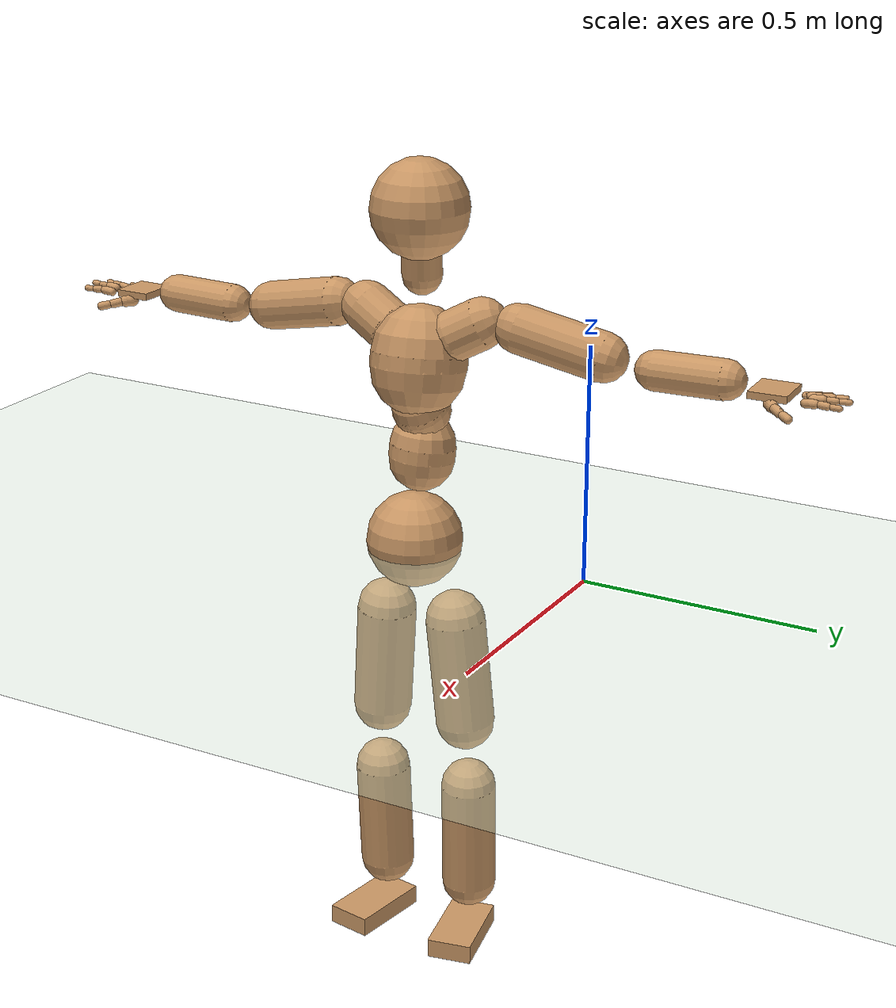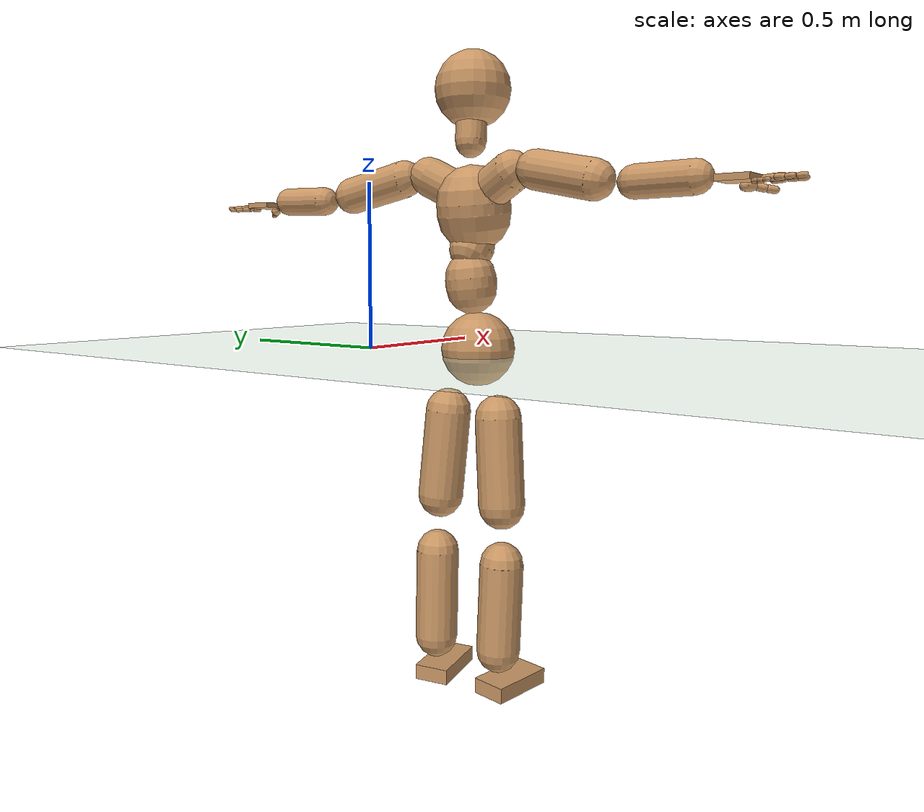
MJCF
<mujoco model="humanoid">
  <compiler coordinate="local" angle="radian"/>
  <default>
    <joint damping="0.0" armature="0.01" stiffness="0.0" limited="true"/>
    <geom conaffinity="1" condim="3" contype="7" margin="0.001" rgba="0.8 0.6 .4 1"/>
  </default>
  <asset>
    <texture type="skybox" builtin="gradient" rgb1=".4 .5 .6" rgb2="0 0 0" width="100" height="100"/>
    <texture builtin="flat" height="1278" mark="cross" markrgb="1 1 1" name="texgeom" random="0.01" rgb1="0.8 0.6 0.4" rgb2="0.8 0.6 0.4" type="cube" width="127"/>
    <texture builtin="checker" height="100" name="texplane" rgb1="0 0 0" rgb2="0.8 0.8 0.8" type="2d" width="100"/>
    <material name="MatPlane" reflectance="0.5" shininess="1" specular="1" texrepeat="60 60" texture="texplane"/>
    <material name="geom" texture="texgeom" texuniform="true"/>
  </asset>
  <worldbody>
    <light cutoff="100" diffuse="1 1 1" dir="-0 0 -1.3" directional="true" exponent="1" pos="0 0 1.3" specular=".1 .1 .1"/>
    <geom conaffinity="1" condim="3" name="floor" pos="0 0 0" rgba="0.8 0.9 0.8 1" size="100 100 .2" type="plane" material="MatPlane"/>
    <body name="Pelvis" pos="0.0007 -0.3987 0.0176">
      <freejoint name="Pelvis"/>
      <geom type="sphere" contype="1" conaffinity="1" density="500" size="0.1038" pos="0.0000 0.0000 0.0000" name="Pelvis"/>
      <body name="L_Hip" pos="-0.0206 0.0795 -0.098">
        <joint name="L_Hip_x" type="hinge" pos="0 0 0" axis="1 0 0" stiffness="800" damping="80" armature="0.02" range="-180.0000 180.0000"/>
        <joint name="L_Hip_y" type="hinge" pos="0 0 0" axis="0 1 0" stiffness="800" damping="80" armature="0.02" range="-180.0000 180.0000"/>
        <joint name="L_Hip_z" type="hinge" pos="0 0 0" axis="0 0 1" stiffness="800" damping="80" armature="0.02" range="-180.0000 180.0000"/>
        <geom type="capsule" contype="1" conaffinity="1" density="500" fromto="-0.0048 0.0058 -0.0820 -0.0194 0.0232 -0.3282" size="0.0647" name="L_Hip"/>
        <body name="L_Knee" pos="-0.0242 0.029 -0.4102">
          <joint name="L_Knee_x" type="hinge" pos="0 0 0" axis="1 0 0" stiffness="800" damping="80" armature="0.02" range="-180.0000 180.0000"/>
          <joint name="L_Knee_y" type="hinge" pos="0 0 0" axis="0 1 0" stiffness="800" damping="80" armature="0.02" range="-180.0000 180.0000"/>
          <joint name="L_Knee_z" type="hinge" pos="0 0 0" axis="0 0 1" stiffness="800" damping="80" armature="0.02" range="-180.0000 180.0000"/>
          <geom type="capsule" contype="1" conaffinity="1" density="500" fromto="-0.0047 -0.0017 -0.0839 -0.0190 -0.0070 -0.3354" size="0.0609" name="L_Knee"/>
          <body name="L_Ankle" pos="-0.0237 -0.0087 -0.4193">
            <joint name="L_Ankle_x" type="hinge" pos="0 0 0" axis="1 0 0" stiffness="800" damping="80" armature="0.02" range="-180.0000 180.0000"/>
            <joint name="L_Ankle_y" type="hinge" pos="0 0 0" axis="0 1 0" stiffness="800" damping="80" armature="0.02" range="-180.0000 180.0000"/>
            <joint name="L_Ankle_z" type="hinge" pos="0 0 0" axis="0 0 1" stiffness="800" damping="80" armature="0.02" range="-180.0000 180.0000"/>
            <geom type="box" contype="1" conaffinity="1" density="500" pos="0.0582 0.0113 -0.0237" size="0.0929 0.0498 0.0215" quat="0.9954 0.0000 0.0000 0.0956" name="L_Ankle"/>
            <body name="L_Toe" pos="0.1164 0.0226 -0.0475">
              <joint name="L_Toe_x" type="hinge" pos="0 0 0" axis="1 0 0" stiffness="500" damping="50" armature="0.02" range="-180.0000 180.0000"/>
              <joint name="L_Toe_y" type="hinge" pos="0 0 0" axis="0 1 0" stiffness="500" damping="50" armature="0.02" range="-180.0000 180.0000"/>
              <joint name="L_Toe_z" type="hinge" pos="0 0 0" axis="0 0 1" stiffness="500" damping="50" armature="0.02" range="-180.0000 180.0000"/>
              <geom type="box" contype="1" conaffinity="1" density="500" pos="0.0000 0.0000 0.0234" size="0.001 0.0024 0.0011" quat="0.9948 0.0000 0.0000 0.1021" name="L_Toe"/>
            </body>
          </body>
        </body>
      </body>
      <body name="R_Hip" pos="-0.0215 -0.0789 -0.105">
        <joint name="R_Hip_x" type="hinge" pos="0 0 0" axis="1 0 0" stiffness="800" damping="80" armature="0.02" range="-180.0000 180.0000"/>
        <joint name="R_Hip_y" type="hinge" pos="0 0 0" axis="0 1 0" stiffness="800" damping="80" armature="0.02" range="-180.0000 180.0000"/>
        <joint name="R_Hip_z" type="hinge" pos="0 0 0" axis="0 0 1" stiffness="800" damping="80" armature="0.02" range="-180.0000 180.0000"/>
        <geom type="capsule" contype="1" conaffinity="1" density="500" fromto="-0.0036 -0.0067 -0.0812 -0.0143 -0.0267 -0.3247" size="0.0645" name="R_Hip"/>
        <body name="R_Knee" pos="-0.0179 -0.0333 -0.4059">
          <joint name="R_Knee_x" type="hinge" pos="0 0 0" axis="1 0 0" stiffness="800" damping="80" armature="0.02" range="-180.0000 180.0000"/>
          <joint name="R_Knee_y" type="hinge" pos="0 0 0" axis="0 1 0" stiffness="800" damping="80" armature="0.02" range="-180.0000 180.0000"/>
          <joint name="R_Knee_z" type="hinge" pos="0 0 0" axis="0 0 1" stiffness="800" damping="80" armature="0.02" range="-180.0000 180.0000"/>
          <geom type="capsule" contype="1" conaffinity="1" density="500" fromto="-0.0040 0.0007 -0.0820 -0.0161 0.0030 -0.3282" size="0.0609" name="R_Knee"/>
          <body name="R_Ankle" pos="-0.0201 0.0037 -0.4102">
            <joint name="R_Ankle_x" type="hinge" pos="0 0 0" axis="1 0 0" stiffness="800" damping="80" armature="0.02" range="-180.0000 180.0000"/>
            <joint name="R_Ankle_y" type="hinge" pos="0 0 0" axis="0 1 0" stiffness="800" damping="80" armature="0.02" range="-180.0000 180.0000"/>
            <joint name="R_Ankle_z" type="hinge" pos="0 0 0" axis="0 0 1" stiffness="800" damping="80" armature="0.02" range="-180.0000 180.0000"/>
            <geom type="box" contype="1" conaffinity="1" density="500" pos="0.0549 -0.0089 -0.0255" size="0.0929 0.0498 0.0215" quat="0.9968 0.0000 0.0000 -0.0805" name="R_Ankle"/>
            <body name="R_Toe" pos="0.1098 -0.0179 -0.051">
              <joint name="R_Toe_x" type="hinge" pos="0 0 0" axis="1 0 0" stiffness="500" damping="50" armature="0.02" range="-180.0000 180.0000"/>
              <joint name="R_Toe_y" type="hinge" pos="0 0 0" axis="0 1 0" stiffness="500" damping="50" armature="0.02" range="-180.0000 180.0000"/>
              <joint name="R_Toe_z" type="hinge" pos="0 0 0" axis="0 0 1" stiffness="500" damping="50" armature="0.02" range="-180.0000 180.0000"/>
              <geom type="box" contype="1" conaffinity="1" density="500" pos="0.0000 0.0000 0.0251" size="0.001 0.0024 0.0011" quat="0.9975 0.0000 0.0000 -0.0704" name="R_Toe"/>
            </body>
          </body>
        </body>
      </body>
      <body name="Torso" pos="-0.0283 -0.0055 0.114">
        <joint name="Torso_x" type="hinge" pos="0 0 0" axis="1 0 0" stiffness="1000" damping="100" armature="0.02" range="-180.0000 180.0000"/>
        <joint name="Torso_y" type="hinge" pos="0 0 0" axis="0 1 0" stiffness="1000" damping="100" armature="0.02" range="-180.0000 180.0000"/>
        <joint name="Torso_z" type="hinge" pos="0 0 0" axis="0 0 1" stiffness="1000" damping="100" armature="0.02" range="-180.0000 180.0000"/>
        <geom type="capsule" contype="1" conaffinity="1" density="500" fromto="-0.0085 0.0056 0.0865 -0.0057 0.0037 0.0577" size="0.0711" name="Torso"/>
        <body name="Spine" pos="-0.0141 0.0093 0.1442">
          <joint name="Spine_x" type="hinge" pos="0 0 0" axis="1 0 0" stiffness="1000" damping="100" armature="0.02" range="-180.0000 180.0000"/>
          <joint name="Spine_y" type="hinge" pos="0 0 0" axis="0 1 0" stiffness="1000" damping="100" armature="0.02" range="-180.0000 180.0000"/>
          <joint name="Spine_z" type="hinge" pos="0 0 0" axis="0 0 1" stiffness="1000" damping="100" armature="0.02" range="-180.0000 180.0000"/>
          <geom type="capsule" contype="1" conaffinity="1" density="500" fromto="0.0177 -0.0029 0.0312 0.0118 -0.0019 0.0208" size="0.0619" name="Spine"/>
          <body name="Chest" pos="0.0295 -0.0048 0.052">
            <joint name="Chest_x" type="hinge" pos="0 0 0" axis="1 0 0" stiffness="1000" damping="100" armature="0.02" range="-180.0000 180.0000"/>
            <joint name="Chest_y" type="hinge" pos="0 0 0" axis="0 1 0" stiffness="1000" damping="100" armature="0.02" range="-180.0000 180.0000"/>
            <joint name="Chest_z" type="hinge" pos="0 0 0" axis="0 0 1" stiffness="1000" damping="100" armature="0.02" range="-180.0000 180.0000"/>
            <geom type="capsule" contype="1" conaffinity="1" density="500" fromto="-0.0156 -0.0017 0.0935 -0.0104 -0.0011 0.0623" size="0.1022" name="Chest"/>
            <body name="Neck" pos="-0.037 -0.0058 0.2186">
              <joint name="Neck_x" type="hinge" pos="0 0 0" axis="1 0 0" stiffness="500" damping="50" armature="0.02" range="-180.0000 180.0000"/>
              <joint name="Neck_y" type="hinge" pos="0 0 0" axis="0 1 0" stiffness="500" damping="50" armature="0.02" range="-180.0000 180.0000"/>
              <joint name="Neck_z" type="hinge" pos="0 0 0" axis="0 0 1" stiffness="500" damping="50" armature="0.02" range="-180.0000 180.0000"/>
              <geom type="capsule" contype="1" conaffinity="1" density="500" fromto="0.0050 0.0018 0.0353 0.0202 0.0071 0.1411" size="0.0424" name="Neck"/>
              <body name="Head" pos="0.0252 0.0089 0.1764">
                <joint name="Head_x" type="hinge" pos="0 0 0" axis="1 0 0" stiffness="500" damping="50" armature="0.02" range="-180.0000 180.0000"/>
                <joint name="Head_y" type="hinge" pos="0 0 0" axis="0 1 0" stiffness="500" damping="50" armature="0.02" range="-180.0000 180.0000"/>
                <joint name="Head_z" type="hinge" pos="0 0 0" axis="0 0 1" stiffness="500" damping="50" armature="0.02" range="-180.0000 180.0000"/>
                <geom type="sphere" contype="1" conaffinity="1" density="500" size="0.1038" pos="0.0000 0.0000 0.0000" name="Head"/>
              </body>
            </body>
            <body name="L_Thorax" pos="-0.0172 0.0541 0.1268">
              <joint name="L_Thorax_x" type="hinge" pos="0 0 0" axis="1 0 0" stiffness="500" damping="50" armature="0.02" range="-180.0000 180.0000"/>
              <joint name="L_Thorax_y" type="hinge" pos="0 0 0" axis="0 1 0" stiffness="500" damping="50" armature="0.02" range="-180.0000 180.0000"/>
              <joint name="L_Thorax_z" type="hinge" pos="0 0 0" axis="0 0 1" stiffness="500" damping="50" armature="0.02" range="-180.0000 180.0000"/>
              <geom type="capsule" contype="1" conaffinity="1" density="500" fromto="-0.0053 0.0194 0.0104 -0.0211 0.0775 0.0417" size="0.0544" name="L_Thorax"/>
              <body name="L_Shoulder" pos="-0.0264 0.0969 0.0522">
                <joint name="L_Shoulder_x" type="hinge" pos="0 0 0" axis="1 0 0" stiffness="500" damping="50" armature="0.02" range="-180.0000 180.0000"/>
                <joint name="L_Shoulder_y" type="hinge" pos="0 0 0" axis="0 1 0" stiffness="500" damping="50" armature="0.02" range="-180.0000 180.0000"/>
                <joint name="L_Shoulder_z" type="hinge" pos="0 0 0" axis="0 0 1" stiffness="500" damping="50" armature="0.02" range="-180.0000 180.0000"/>
                <geom type="capsule" contype="1" conaffinity="1" density="500" fromto="-0.0063 0.0600 -0.0131 -0.0251 0.2401 -0.0523" size="0.052" name="L_Shoulder"/>
                <body name="L_Elbow" pos="-0.0314 0.3001 -0.0653">
                  <joint name="L_Elbow_x" type="hinge" pos="0 0 0" axis="1 0 0" stiffness="500" damping="50" armature="0.02" range="-720.0000 720.0000"/>
                  <joint name="L_Elbow_y" type="hinge" pos="0 0 0" axis="0 1 0" stiffness="500" damping="50" armature="0.02" range="-720.0000 720.0000"/>
                  <joint name="L_Elbow_z" type="hinge" pos="0 0 0" axis="0 0 1" stiffness="500" damping="50" armature="0.02" range="-720.0000 720.0000"/>
                  <geom type="capsule" contype="1" conaffinity="1" density="500" fromto="0.0007 0.0502 0.0014 0.0028 0.2010 0.0057" size="0.0413" name="L_Elbow"/>
                  <body name="L_Wrist" pos="0.0035 0.2512 0.0072">
                    <joint name="L_Wrist_x" type="hinge" pos="0 0 0" axis="1 0 0" stiffness="300" damping="30" armature="0.02" range="-180.0000 180.0000"/>
                    <joint name="L_Wrist_y" type="hinge" pos="0 0 0" axis="0 1 0" stiffness="300" damping="30" armature="0.02" range="-180.0000 180.0000"/>
                    <joint name="L_Wrist_z" type="hinge" pos="0 0 0" axis="0 0 1" stiffness="300" damping="30" armature="0.02" range="-180.0000 180.0000"/>
                    <geom type="box" contype="1" conaffinity="1" density="500" pos="-0.0021 0.0483 -0.0092" size="0.0397 0.0458 0.0075" quat="0.7225 0.0000 0.0000 -0.6914" name="L_Wrist"/>
                    <body name="L_Index1" pos="0.0207 0.113 -0.0162">
                      <joint name="L_Index1_x" type="hinge" pos="0 0 0" axis="1 0 0" stiffness="100" damping="10" armature="0.02" range="-180.0000 180.0000"/>
                      <joint name="L_Index1_y" type="hinge" pos="0 0 0" axis="0 1 0" stiffness="100" damping="10" armature="0.02" range="-180.0000 180.0000"/>
                      <joint name="L_Index1_z" type="hinge" pos="0 0 0" axis="0 0 1" stiffness="100" damping="10" armature="0.02" range="-180.0000 180.0000"/>
                      <geom type="capsule" contype="1" conaffinity="1" density="500" fromto="0.0005 0.0066 0.0006 0.0021 0.0263 0.0025" size="0.0091" name="L_Index1"/>
                      <body name="L_Index2" pos="0.0026 0.0329 0.0031">
                        <joint name="L_Index2_x" type="hinge" pos="0 0 0" axis="1 0 0" stiffness="100" damping="10" armature="0.02" range="-180.0000 180.0000"/>
                        <joint name="L_Index2_y" type="hinge" pos="0 0 0" axis="0 1 0" stiffness="100" damping="10" armature="0.02" range="-180.0000 180.0000"/>
                        <joint name="L_Index2_z" type="hinge" pos="0 0 0" axis="0 0 1" stiffness="100" damping="10" armature="0.02" range="-180.0000 180.0000"/>
                        <geom type="capsule" contype="1" conaffinity="1" density="500" fromto="0.0001 0.0046 -0.0003 0.0003 0.0185 -0.0012" size="0.0076" name="L_Index2"/>
                        <body name="L_Index3" pos="0.0004 0.0231 -0.0015">
                          <joint name="L_Index3_x" type="hinge" pos="0 0 0" axis="1 0 0" stiffness="100" damping="10" armature="0.02" range="-180.0000 180.0000"/>
                          <joint name="L_Index3_y" type="hinge" pos="0 0 0" axis="0 1 0" stiffness="100" damping="10" armature="0.02" range="-180.0000 180.0000"/>
                          <joint name="L_Index3_z" type="hinge" pos="0 0 0" axis="0 0 1" stiffness="100" damping="10" armature="0.02" range="-180.0000 180.0000"/>
                          <geom type="capsule" contype="1" conaffinity="1" density="500" fromto="0.0005 0.0050 0.0001 0.0019 0.0201 0.0004" size="0.0063" name="L_Index3"/>
                        </body>
                      </body>
                    </body>
                    <body name="L_Middle1" pos="-0.0023 0.1204 -0.0135">
                      <joint name="L_Middle1_x" type="hinge" pos="0 0 0" axis="1 0 0" stiffness="100" damping="10" armature="0.02" range="-180.0000 180.0000"/>
                      <joint name="L_Middle1_y" type="hinge" pos="0 0 0" axis="0 1 0" stiffness="100" damping="10" armature="0.02" range="-180.0000 180.0000"/>
                      <joint name="L_Middle1_z" type="hinge" pos="0 0 0" axis="0 0 1" stiffness="100" damping="10" armature="0.02" range="-180.0000 180.0000"/>
                      <geom type="capsule" contype="1" conaffinity="1" density="500" fromto="-0.0008 0.0062 0.0003 -0.0030 0.0249 0.0013" size="0.0093" name="L_Middle1"/>
                      <body name="L_Middle2" pos="-0.0038 0.0311 0.0016">
                        <joint name="L_Middle2_x" type="hinge" pos="0 0 0" axis="1 0 0" stiffness="100" damping="10" armature="0.02" range="-180.0000 180.0000"/>
                        <joint name="L_Middle2_y" type="hinge" pos="0 0 0" axis="0 1 0" stiffness="100" damping="10" armature="0.02" range="-180.0000 180.0000"/>
                        <joint name="L_Middle2_z" type="hinge" pos="0 0 0" axis="0 0 1" stiffness="100" damping="10" armature="0.02" range="-180.0000 180.0000"/>
                        <geom type="capsule" contype="1" conaffinity="1" density="500" fromto="-0.0008 0.0048 -0.0001 -0.0030 0.0193 -0.0005" size="0.0069" name="L_Middle2"/>
                        <body name="L_Middle3" pos="-0.0038 0.0241 -0.0006">
                          <joint name="L_Middle3_x" type="hinge" pos="0 0 0" axis="1 0 0" stiffness="100" damping="10" armature="0.02" range="-180.0000 180.0000"/>
                          <joint name="L_Middle3_y" type="hinge" pos="0 0 0" axis="0 1 0" stiffness="100" damping="10" armature="0.02" range="-180.0000 180.0000"/>
                          <joint name="L_Middle3_z" type="hinge" pos="0 0 0" axis="0 0 1" stiffness="100" damping="10" armature="0.02" range="-180.0000 180.0000"/>
                          <geom type="capsule" contype="1" conaffinity="1" density="500" fromto="-0.0004 0.0052 0.0003 -0.0014 0.0209 0.0011" size="0.0061" name="L_Middle3"/>
                        </body>
                      </body>
                    </body>
                    <body name="L_Pinky1" pos="-0.0418 0.0935 -0.0217">
                      <joint name="L_Pinky1_x" type="hinge" pos="0 0 0" axis="1 0 0" stiffness="100" damping="10" armature="0.02" range="-180.0000 180.0000"/>
                      <joint name="L_Pinky1_y" type="hinge" pos="0 0 0" axis="0 1 0" stiffness="100" damping="10" armature="0.02" range="-180.0000 180.0000"/>
                      <joint name="L_Pinky1_z" type="hinge" pos="0 0 0" axis="0 0 1" stiffness="100" damping="10" armature="0.02" range="-180.0000 180.0000"/>
                      <geom type="capsule" contype="1" conaffinity="1" density="500" fromto="-0.0024 0.0030 -0.0001 -0.0096 0.0122 -0.0004" size="0.0066" name="L_Pinky1"/>
                      <body name="L_Pinky2" pos="-0.012 0.0152 -0.0005">
                        <joint name="L_Pinky2_x" type="hinge" pos="0 0 0" axis="1 0 0" stiffness="100" damping="10" armature="0.02" range="-180.0000 180.0000"/>
                        <joint name="L_Pinky2_y" type="hinge" pos="0 0 0" axis="0 1 0" stiffness="100" damping="10" armature="0.02" range="-180.0000 180.0000"/>
                        <joint name="L_Pinky2_z" type="hinge" pos="0 0 0" axis="0 0 1" stiffness="100" damping="10" armature="0.02" range="-180.0000 180.0000"/>
                        <geom type="capsule" contype="1" conaffinity="1" density="500" fromto="-0.0024 0.0031 -0.0002 -0.0094 0.0123 -0.0008" size="0.0064" name="L_Pinky2"/>
                        <body name="L_Pinky3" pos="-0.0118 0.0154 -0.001">
                          <joint name="L_Pinky3_x" type="hinge" pos="0 0 0" axis="1 0 0" stiffness="100" damping="10" armature="0.02" range="-180.0000 180.0000"/>
                          <joint name="L_Pinky3_y" type="hinge" pos="0 0 0" axis="0 1 0" stiffness="100" damping="10" armature="0.02" range="-180.0000 180.0000"/>
                          <joint name="L_Pinky3_z" type="hinge" pos="0 0 0" axis="0 0 1" stiffness="100" damping="10" armature="0.02" range="-180.0000 180.0000"/>
                          <geom type="capsule" contype="1" conaffinity="1" density="500" fromto="-0.0020 0.0035 0.0002 -0.0078 0.0139 0.0008" size="0.005" name="L_Pinky3"/>
                        </body>
                      </body>
                    </body>
                    <body name="L_Ring1" pos="-0.0256 0.1076 -0.0163">
                      <joint name="L_Ring1_x" type="hinge" pos="0 0 0" axis="1 0 0" stiffness="100" damping="10" armature="0.02" range="-180.0000 180.0000"/>
                      <joint name="L_Ring1_y" type="hinge" pos="0 0 0" axis="0 1 0" stiffness="100" damping="10" armature="0.02" range="-180.0000 180.0000"/>
                      <joint name="L_Ring1_z" type="hinge" pos="0 0 0" axis="0 0 1" stiffness="100" damping="10" armature="0.02" range="-180.0000 180.0000"/>
                      <geom type="capsule" contype="1" conaffinity="1" density="500" fromto="-0.0011 0.0057 0.0004 -0.0043 0.0227 0.0016" size="0.008" name="L_Ring1"/>
                      <body name="L_Ring2" pos="-0.0053 0.0284 0.0019">
                        <joint name="L_Ring2_x" type="hinge" pos="0 0 0" axis="1 0 0" stiffness="100" damping="10" armature="0.02" range="-180.0000 180.0000"/>
                        <joint name="L_Ring2_y" type="hinge" pos="0 0 0" axis="0 1 0" stiffness="100" damping="10" armature="0.02" range="-180.0000 180.0000"/>
                        <joint name="L_Ring2_z" type="hinge" pos="0 0 0" axis="0 0 1" stiffness="100" damping="10" armature="0.02" range="-180.0000 180.0000"/>
                        <geom type="capsule" contype="1" conaffinity="1" density="500" fromto="-0.0015 0.0046 -0.0002 -0.0058 0.0185 -0.0008" size="0.0074" name="L_Ring2"/>
                        <body name="L_Ring3" pos="-0.0073 0.0231 -0.001">
                          <joint name="L_Ring3_x" type="hinge" pos="0 0 0" axis="1 0 0" stiffness="100" damping="10" armature="0.02" range="-180.0000 180.0000"/>
                          <joint name="L_Ring3_y" type="hinge" pos="0 0 0" axis="0 1 0" stiffness="100" damping="10" armature="0.02" range="-180.0000 180.0000"/>
                          <joint name="L_Ring3_z" type="hinge" pos="0 0 0" axis="0 0 1" stiffness="100" damping="10" armature="0.02" range="-180.0000 180.0000"/>
                          <geom type="capsule" contype="1" conaffinity="1" density="500" fromto="-0.0011 0.0050 0.0002 -0.0042 0.0201 0.0008" size="0.0058" name="L_Ring3"/>
                        </body>
                      </body>
                    </body>
                    <body name="L_Thumb1" pos="0.0278 0.0487 -0.0242">
                      <joint name="L_Thumb1_x" type="hinge" pos="0 0 0" axis="1 0 0" stiffness="100" damping="10" armature="0.02" range="-180.0000 180.0000"/>
                      <joint name="L_Thumb1_y" type="hinge" pos="0 0 0" axis="0 1 0" stiffness="100" damping="10" armature="0.02" range="-180.0000 180.0000"/>
                      <joint name="L_Thumb1_z" type="hinge" pos="0 0 0" axis="0 0 1" stiffness="100" damping="10" armature="0.02" range="-180.0000 180.0000"/>
                      <geom type="capsule" contype="1" conaffinity="1" density="500" fromto="0.0049 0.0037 0.0002 0.0197 0.0150 0.0006" size="0.0123" name="L_Thumb1"/>
                      <body name="L_Thumb2" pos="0.0246 0.0187 0.0008">
                        <joint name="L_Thumb2_x" type="hinge" pos="0 0 0" axis="1 0 0" stiffness="100" damping="10" armature="0.02" range="-180.0000 180.0000"/>
                        <joint name="L_Thumb2_y" type="hinge" pos="0 0 0" axis="0 1 0" stiffness="100" damping="10" armature="0.02" range="-180.0000 180.0000"/>
                        <joint name="L_Thumb2_z" type="hinge" pos="0 0 0" axis="0 0 1" stiffness="100" damping="10" armature="0.02" range="-180.0000 180.0000"/>
                        <geom type="capsule" contype="1" conaffinity="1" density="500" fromto="0.0030 0.0044 -0.0012 0.0120 0.0174 -0.0047" size="0.0096" name="L_Thumb2"/>
                        <body name="L_Thumb3" pos="0.015 0.0218 -0.0058">
                          <joint name="L_Thumb3_x" type="hinge" pos="0 0 0" axis="1 0 0" stiffness="100" damping="10" armature="0.02" range="-180.0000 180.0000"/>
                          <joint name="L_Thumb3_y" type="hinge" pos="0 0 0" axis="0 1 0" stiffness="100" damping="10" armature="0.02" range="-180.0000 180.0000"/>
                          <joint name="L_Thumb3_z" type="hinge" pos="0 0 0" axis="0 0 1" stiffness="100" damping="10" armature="0.02" range="-180.0000 180.0000"/>
                          <geom type="capsule" contype="1" conaffinity="1" density="500" fromto="0.0034 0.0048 -0.0008 0.0136 0.0190 -0.0031" size="0.0088" name="L_Thumb3"/>
                        </body>
                      </body>
                    </body>
                  </body>
                </body>
              </body>
            </body>
            <body name="R_Thorax" pos="-0.0238 -0.0566 0.1222">
              <joint name="R_Thorax_x" type="hinge" pos="0 0 0" axis="1 0 0" stiffness="500" damping="50" armature="0.02" range="-180.0000 180.0000"/>
              <joint name="R_Thorax_y" type="hinge" pos="0 0 0" axis="0 1 0" stiffness="500" damping="50" armature="0.02" range="-180.0000 180.0000"/>
              <joint name="R_Thorax_z" type="hinge" pos="0 0 0" axis="0 0 1" stiffness="500" damping="50" armature="0.02" range="-180.0000 180.0000"/>
              <geom type="capsule" contype="1" conaffinity="1" density="500" fromto="-0.0040 -0.0210 0.0110 -0.0160 -0.0840 0.0440" size="0.0555" name="R_Thorax"/>
              <body name="R_Shoulder" pos="-0.02 -0.105 0.055">
                <joint name="R_Shoulder_x" type="hinge" pos="0 0 0" axis="1 0 0" stiffness="500" damping="50" armature="0.02" range="-180.0000 180.0000"/>
                <joint name="R_Shoulder_y" type="hinge" pos="0 0 0" axis="0 1 0" stiffness="500" damping="50" armature="0.02" range="-180.0000 180.0000"/>
                <joint name="R_Shoulder_z" type="hinge" pos="0 0 0" axis="0 0 1" stiffness="500" damping="50" armature="0.02" range="-180.0000 180.0000"/>
                <geom type="capsule" contype="1" conaffinity="1" density="500" fromto="-0.0046 -0.0579 -0.0120 -0.0185 -0.2317 -0.0480" size="0.0524" name="R_Shoulder"/>
                <body name="R_Elbow" pos="-0.0232 -0.2897 -0.06">
                  <joint name="R_Elbow_x" type="hinge" pos="0 0 0" axis="1 0 0" stiffness="500" damping="50" armature="0.02" range="-720.0000 720.0000"/>
                  <joint name="R_Elbow_y" type="hinge" pos="0 0 0" axis="0 1 0" stiffness="500" damping="50" armature="0.02" range="-720.0000 720.0000"/>
                  <joint name="R_Elbow_z" type="hinge" pos="0 0 0" axis="0 0 1" stiffness="500" damping="50" armature="0.02" range="-720.0000 720.0000"/>
                  <geom type="capsule" contype="1" conaffinity="1" density="500" fromto="-0.0013 -0.0504 0.0006 -0.0050 -0.2015 0.0023" size="0.0415" name="R_Elbow"/>
                  <body name="R_Wrist" pos="-0.0063 -0.2519 0.0028">
                    <joint name="R_Wrist_x" type="hinge" pos="0 0 0" axis="1 0 0" stiffness="300" damping="30" armature="0.02" range="-180.0000 180.0000"/>
                    <joint name="R_Wrist_y" type="hinge" pos="0 0 0" axis="0 1 0" stiffness="300" damping="30" armature="0.02" range="-180.0000 180.0000"/>
                    <joint name="R_Wrist_z" type="hinge" pos="0 0 0" axis="0 0 1" stiffness="300" damping="30" armature="0.02" range="-180.0000 180.0000"/>
                    <geom type="box" contype="1" conaffinity="1" density="500" pos="-0.0012 -0.0476 -0.0088" size="0.0397 0.0429 0.0077" quat="0.7163 0.0000 0.0000 0.6978" name="R_Wrist"/>
                    <body name="R_Index1" pos="0.0224 -0.1115 -0.0153">
                      <joint name="R_Index1_x" type="hinge" pos="0 0 0" axis="1 0 0" stiffness="100" damping="10" armature="0.02" range="-180.0000 180.0000"/>
                      <joint name="R_Index1_y" type="hinge" pos="0 0 0" axis="0 1 0" stiffness="100" damping="10" armature="0.02" range="-180.0000 180.0000"/>
                      <joint name="R_Index1_z" type="hinge" pos="0 0 0" axis="0 0 1" stiffness="100" damping="10" armature="0.02" range="-180.0000 180.0000"/>
                      <geom type="capsule" contype="1" conaffinity="1" density="500" fromto="0.0005 -0.0066 0.0006 0.0021 -0.0263 0.0025" size="0.0091" name="R_Index1"/>
                      <body name="R_Index2" pos="0.0026 -0.0329 0.0031">
                        <joint name="R_Index2_x" type="hinge" pos="0 0 0" axis="1 0 0" stiffness="100" damping="10" armature="0.02" range="-180.0000 180.0000"/>
                        <joint name="R_Index2_y" type="hinge" pos="0 0 0" axis="0 1 0" stiffness="100" damping="10" armature="0.02" range="-180.0000 180.0000"/>
                        <joint name="R_Index2_z" type="hinge" pos="0 0 0" axis="0 0 1" stiffness="100" damping="10" armature="0.02" range="-180.0000 180.0000"/>
                        <geom type="capsule" contype="1" conaffinity="1" density="500" fromto="0.0001 -0.0046 -0.0003 0.0003 -0.0185 -0.0012" size="0.0076" name="R_Index2"/>
                        <body name="R_Index3" pos="0.0004 -0.0231 -0.0015">
                          <joint name="R_Index3_x" type="hinge" pos="0 0 0" axis="1 0 0" stiffness="100" damping="10" armature="0.02" range="-180.0000 180.0000"/>
                          <joint name="R_Index3_y" type="hinge" pos="0 0 0" axis="0 1 0" stiffness="100" damping="10" armature="0.02" range="-180.0000 180.0000"/>
                          <joint name="R_Index3_z" type="hinge" pos="0 0 0" axis="0 0 1" stiffness="100" damping="10" armature="0.02" range="-180.0000 180.0000"/>
                          <geom type="capsule" contype="1" conaffinity="1" density="500" fromto="0.0005 -0.0042 0.0001 0.0019 -0.0169 0.0004" size="0.0066" name="R_Index3"/>
                        </body>
                      </body>
                    </body>
                    <body name="R_Middle1" pos="-0.0006 -0.1189 -0.0127">
                      <joint name="R_Middle1_x" type="hinge" pos="0 0 0" axis="1 0 0" stiffness="100" damping="10" armature="0.02" range="-180.0000 180.0000"/>
                      <joint name="R_Middle1_y" type="hinge" pos="0 0 0" axis="0 1 0" stiffness="100" damping="10" armature="0.02" range="-180.0000 180.0000"/>
                      <joint name="R_Middle1_z" type="hinge" pos="0 0 0" axis="0 0 1" stiffness="100" damping="10" armature="0.02" range="-180.0000 180.0000"/>
                      <geom type="capsule" contype="1" conaffinity="1" density="500" fromto="-0.0008 -0.0062 0.0003 -0.0030 -0.0249 0.0013" size="0.0093" name="R_Middle1"/>
                      <body name="R_Middle2" pos="-0.0038 -0.0311 0.0016">
                        <joint name="R_Middle2_x" type="hinge" pos="0 0 0" axis="1 0 0" stiffness="100" damping="10" armature="0.02" range="-180.0000 180.0000"/>
                        <joint name="R_Middle2_y" type="hinge" pos="0 0 0" axis="0 1 0" stiffness="100" damping="10" armature="0.02" range="-180.0000 180.0000"/>
                        <joint name="R_Middle2_z" type="hinge" pos="0 0 0" axis="0 0 1" stiffness="100" damping="10" armature="0.02" range="-180.0000 180.0000"/>
                        <geom type="capsule" contype="1" conaffinity="1" density="500" fromto="-0.0008 -0.0048 -0.0001 -0.0030 -0.0193 -0.0005" size="0.0069" name="R_Middle2"/>
                        <body name="R_Middle3" pos="-0.0038 -0.0241 -0.0006">
                          <joint name="R_Middle3_x" type="hinge" pos="0 0 0" axis="1 0 0" stiffness="100" damping="10" armature="0.02" range="-180.0000 180.0000"/>
                          <joint name="R_Middle3_y" type="hinge" pos="0 0 0" axis="0 1 0" stiffness="100" damping="10" armature="0.02" range="-180.0000 180.0000"/>
                          <joint name="R_Middle3_z" type="hinge" pos="0 0 0" axis="0 0 1" stiffness="100" damping="10" armature="0.02" range="-180.0000 180.0000"/>
                          <geom type="capsule" contype="1" conaffinity="1" density="500" fromto="-0.0004 -0.0044 0.0003 -0.0014 -0.0177 0.0011" size="0.0064" name="R_Middle3"/>
                        </body>
                      </body>
                    </body>
                    <body name="R_Pinky1" pos="-0.04 -0.092 -0.0209">
                      <joint name="R_Pinky1_x" type="hinge" pos="0 0 0" axis="1 0 0" stiffness="100" damping="10" armature="0.02" range="-180.0000 180.0000"/>
                      <joint name="R_Pinky1_y" type="hinge" pos="0 0 0" axis="0 1 0" stiffness="100" damping="10" armature="0.02" range="-180.0000 180.0000"/>
                      <joint name="R_Pinky1_z" type="hinge" pos="0 0 0" axis="0 0 1" stiffness="100" damping="10" armature="0.02" range="-180.0000 180.0000"/>
                      <geom type="capsule" contype="1" conaffinity="1" density="500" fromto="-0.0024 -0.0030 -0.0001 -0.0096 -0.0122 -0.0004" size="0.0066" name="R_Pinky1"/>
                      <body name="R_Pinky2" pos="-0.012 -0.0152 -0.0005">
                        <joint name="R_Pinky2_x" type="hinge" pos="0 0 0" axis="1 0 0" stiffness="100" damping="10" armature="0.02" range="-180.0000 180.0000"/>
                        <joint name="R_Pinky2_y" type="hinge" pos="0 0 0" axis="0 1 0" stiffness="100" damping="10" armature="0.02" range="-180.0000 180.0000"/>
                        <joint name="R_Pinky2_z" type="hinge" pos="0 0 0" axis="0 0 1" stiffness="100" damping="10" armature="0.02" range="-180.0000 180.0000"/>
                        <geom type="capsule" contype="1" conaffinity="1" density="500" fromto="-0.0024 -0.0031 -0.0002 -0.0094 -0.0123 -0.0008" size="0.0064" name="R_Pinky2"/>
                        <body name="R_Pinky3" pos="-0.0118 -0.0154 -0.001">
                          <joint name="R_Pinky3_x" type="hinge" pos="0 0 0" axis="1 0 0" stiffness="100" damping="10" armature="0.02" range="-180.0000 180.0000"/>
                          <joint name="R_Pinky3_y" type="hinge" pos="0 0 0" axis="0 1 0" stiffness="100" damping="10" armature="0.02" range="-180.0000 180.0000"/>
                          <joint name="R_Pinky3_z" type="hinge" pos="0 0 0" axis="0 0 1" stiffness="100" damping="10" armature="0.02" range="-180.0000 180.0000"/>
                          <geom type="capsule" contype="1" conaffinity="1" density="500" fromto="-0.0020 -0.0027 0.0002 -0.0078 -0.0107 0.0008" size="0.0053" name="R_Pinky3"/>
                        </body>
                      </body>
                    </body>
                    <body name="R_Ring1" pos="-0.0238 -0.1061 -0.0155">
                      <joint name="R_Ring1_x" type="hinge" pos="0 0 0" axis="1 0 0" stiffness="100" damping="10" armature="0.02" range="-180.0000 180.0000"/>
                      <joint name="R_Ring1_y" type="hinge" pos="0 0 0" axis="0 1 0" stiffness="100" damping="10" armature="0.02" range="-180.0000 180.0000"/>
                      <joint name="R_Ring1_z" type="hinge" pos="0 0 0" axis="0 0 1" stiffness="100" damping="10" armature="0.02" range="-180.0000 180.0000"/>
                      <geom type="capsule" contype="1" conaffinity="1" density="500" fromto="-0.0011 -0.0057 0.0004 -0.0043 -0.0227 0.0016" size="0.008" name="R_Ring1"/>
                      <body name="R_Ring2" pos="-0.0053 -0.0284 0.0019">
                        <joint name="R_Ring2_x" type="hinge" pos="0 0 0" axis="1 0 0" stiffness="100" damping="10" armature="0.02" range="-180.0000 180.0000"/>
                        <joint name="R_Ring2_y" type="hinge" pos="0 0 0" axis="0 1 0" stiffness="100" damping="10" armature="0.02" range="-180.0000 180.0000"/>
                        <joint name="R_Ring2_z" type="hinge" pos="0 0 0" axis="0 0 1" stiffness="100" damping="10" armature="0.02" range="-180.0000 180.0000"/>
                        <geom type="capsule" contype="1" conaffinity="1" density="500" fromto="-0.0015 -0.0046 -0.0002 -0.0058 -0.0185 -0.0008" size="0.0074" name="R_Ring2"/>
                        <body name="R_Ring3" pos="-0.0073 -0.0231 -0.001">
                          <joint name="R_Ring3_x" type="hinge" pos="0 0 0" axis="1 0 0" stiffness="100" damping="10" armature="0.02" range="-180.0000 180.0000"/>
                          <joint name="R_Ring3_y" type="hinge" pos="0 0 0" axis="0 1 0" stiffness="100" damping="10" armature="0.02" range="-180.0000 180.0000"/>
                          <joint name="R_Ring3_z" type="hinge" pos="0 0 0" axis="0 0 1" stiffness="100" damping="10" armature="0.02" range="-180.0000 180.0000"/>
                          <geom type="capsule" contype="1" conaffinity="1" density="500" fromto="-0.0011 -0.0042 0.0002 -0.0042 -0.0169 0.0008" size="0.0061" name="R_Ring3"/>
                        </body>
                      </body>
                    </body>
                    <body name="R_Thumb1" pos="0.0296 -0.0473 -0.0234">
                      <joint name="R_Thumb1_x" type="hinge" pos="0 0 0" axis="1 0 0" stiffness="100" damping="10" armature="0.02" range="-180.0000 180.0000"/>
                      <joint name="R_Thumb1_y" type="hinge" pos="0 0 0" axis="0 1 0" stiffness="100" damping="10" armature="0.02" range="-180.0000 180.0000"/>
                      <joint name="R_Thumb1_z" type="hinge" pos="0 0 0" axis="0 0 1" stiffness="100" damping="10" armature="0.02" range="-180.0000 180.0000"/>
                      <geom type="capsule" contype="1" conaffinity="1" density="500" fromto="0.0049 -0.0037 0.0002 0.0197 -0.0150 0.0006" size="0.0123" name="R_Thumb1"/>
                      <body name="R_Thumb2" pos="0.0246 -0.0187 0.0008">
                        <joint name="R_Thumb2_x" type="hinge" pos="0 0 0" axis="1 0 0" stiffness="100" damping="10" armature="0.02" range="-180.0000 180.0000"/>
                        <joint name="R_Thumb2_y" type="hinge" pos="0 0 0" axis="0 1 0" stiffness="100" damping="10" armature="0.02" range="-180.0000 180.0000"/>
                        <joint name="R_Thumb2_z" type="hinge" pos="0 0 0" axis="0 0 1" stiffness="100" damping="10" armature="0.02" range="-180.0000 180.0000"/>
                        <geom type="capsule" contype="1" conaffinity="1" density="500" fromto="0.0030 -0.0044 -0.0012 0.0120 -0.0174 -0.0047" size="0.0096" name="R_Thumb2"/>
                        <body name="R_Thumb3" pos="0.015 -0.0218 -0.0058">
                          <joint name="R_Thumb3_x" type="hinge" pos="0 0 0" axis="1 0 0" stiffness="100" damping="10" armature="0.02" range="-180.0000 180.0000"/>
                          <joint name="R_Thumb3_y" type="hinge" pos="0 0 0" axis="0 1 0" stiffness="100" damping="10" armature="0.02" range="-180.0000 180.0000"/>
                          <joint name="R_Thumb3_z" type="hinge" pos="0 0 0" axis="0 0 1" stiffness="100" damping="10" armature="0.02" range="-180.0000 180.0000"/>
                          <geom type="capsule" contype="1" conaffinity="1" density="500" fromto="0.0034 -0.0040 -0.0008 0.0136 -0.0158 -0.0031" size="0.009" name="R_Thumb3"/>
                        </body>
                      </body>
                    </body>
                  </body>
                </body>
              </body>
            </body>
          </body>
        </body>
      </body>
    </body>
  </worldbody>
  <actuator>
    <motor name="L_Hip_x" joint="L_Hip_x" gear="500"/>
    <motor name="L_Hip_y" joint="L_Hip_y" gear="500"/>
    <motor name="L_Hip_z" joint="L_Hip_z" gear="500"/>
    <motor name="L_Knee_x" joint="L_Knee_x" gear="500"/>
    <motor name="L_Knee_y" joint="L_Knee_y" gear="500"/>
    <motor name="L_Knee_z" joint="L_Knee_z" gear="500"/>
    <motor name="L_Ankle_x" joint="L_Ankle_x" gear="500"/>
    <motor name="L_Ankle_y" joint="L_Ankle_y" gear="500"/>
    <motor name="L_Ankle_z" joint="L_Ankle_z" gear="500"/>
    <motor name="L_Toe_x" joint="L_Toe_x" gear="500"/>
    <motor name="L_Toe_y" joint="L_Toe_y" gear="500"/>
    <motor name="L_Toe_z" joint="L_Toe_z" gear="500"/>
    <motor name="R_Hip_x" joint="R_Hip_x" gear="500"/>
    <motor name="R_Hip_y" joint="R_Hip_y" gear="500"/>
    <motor name="R_Hip_z" joint="R_Hip_z" gear="500"/>
    <motor name="R_Knee_x" joint="R_Knee_x" gear="500"/>
    <motor name="R_Knee_y" joint="R_Knee_y" gear="500"/>
    <motor name="R_Knee_z" joint="R_Knee_z" gear="500"/>
    <motor name="R_Ankle_x" joint="R_Ankle_x" gear="500"/>
    <motor name="R_Ankle_y" joint="R_Ankle_y" gear="500"/>
    <motor name="R_Ankle_z" joint="R_Ankle_z" gear="500"/>
    <motor name="R_Toe_x" joint="R_Toe_x" gear="500"/>
    <motor name="R_Toe_y" joint="R_Toe_y" gear="500"/>
    <motor name="R_Toe_z" joint="R_Toe_z" gear="500"/>
    <motor name="Torso_x" joint="Torso_x" gear="500"/>
    <motor name="Torso_y" joint="Torso_y" gear="500"/>
    <motor name="Torso_z" joint="Torso_z" gear="500"/>
    <motor name="Spine_x" joint="Spine_x" gear="500"/>
    <motor name="Spine_y" joint="Spine_y" gear="500"/>
    <motor name="Spine_z" joint="Spine_z" gear="500"/>
    <motor name="Chest_x" joint="Chest_x" gear="500"/>
    <motor name="Chest_y" joint="Chest_y" gear="500"/>
    <motor name="Chest_z" joint="Chest_z" gear="500"/>
    <motor name="Neck_x" joint="Neck_x" gear="500"/>
    <motor name="Neck_y" joint="Neck_y" gear="500"/>
    <motor name="Neck_z" joint="Neck_z" gear="500"/>
    <motor name="Head_x" joint="Head_x" gear="500"/>
    <motor name="Head_y" joint="Head_y" gear="500"/>
    <motor name="Head_z" joint="Head_z" gear="500"/>
    <motor name="L_Thorax_x" joint="L_Thorax_x" gear="500"/>
    <motor name="L_Thorax_y" joint="L_Thorax_y" gear="500"/>
    <motor name="L_Thorax_z" joint="L_Thorax_z" gear="500"/>
    <motor name="L_Shoulder_x" joint="L_Shoulder_x" gear="500"/>
    <motor name="L_Shoulder_y" joint="L_Shoulder_y" gear="500"/>
    <motor name="L_Shoulder_z" joint="L_Shoulder_z" gear="500"/>
    <motor name="L_Elbow_x" joint="L_Elbow_x" gear="500"/>
    <motor name="L_Elbow_y" joint="L_Elbow_y" gear="500"/>
    <motor name="L_Elbow_z" joint="L_Elbow_z" gear="500"/>
    <motor name="L_Wrist_x" joint="L_Wrist_x" gear="500"/>
    <motor name="L_Wrist_y" joint="L_Wrist_y" gear="500"/>
    <motor name="L_Wrist_z" joint="L_Wrist_z" gear="500"/>
    <motor name="L_Index1_x" joint="L_Index1_x" gear="500"/>
    <motor name="L_Index1_y" joint="L_Index1_y" gear="500"/>
    <motor name="L_Index1_z" joint="L_Index1_z" gear="500"/>
    <motor name="L_Index2_x" joint="L_Index2_x" gear="500"/>
    <motor name="L_Index2_y" joint="L_Index2_y" gear="500"/>
    <motor name="L_Index2_z" joint="L_Index2_z" gear="500"/>
    <motor name="L_Index3_x" joint="L_Index3_x" gear="500"/>
    <motor name="L_Index3_y" joint="L_Index3_y" gear="500"/>
    <motor name="L_Index3_z" joint="L_Index3_z" gear="500"/>
    <motor name="L_Middle1_x" joint="L_Middle1_x" gear="500"/>
    <motor name="L_Middle1_y" joint="L_Middle1_y" gear="500"/>
    <motor name="L_Middle1_z" joint="L_Middle1_z" gear="500"/>
    <motor name="L_Middle2_x" joint="L_Middle2_x" gear="500"/>
    <motor name="L_Middle2_y" joint="L_Middle2_y" gear="500"/>
    <motor name="L_Middle2_z" joint="L_Middle2_z" gear="500"/>
    <motor name="L_Middle3_x" joint="L_Middle3_x" gear="500"/>
    <motor name="L_Middle3_y" joint="L_Middle3_y" gear="500"/>
    <motor name="L_Middle3_z" joint="L_Middle3_z" gear="500"/>
    <motor name="L_Pinky1_x" joint="L_Pinky1_x" gear="500"/>
    <motor name="L_Pinky1_y" joint="L_Pinky1_y" gear="500"/>
    <motor name="L_Pinky1_z" joint="L_Pinky1_z" gear="500"/>
    <motor name="L_Pinky2_x" joint="L_Pinky2_x" gear="500"/>
    <motor name="L_Pinky2_y" joint="L_Pinky2_y" gear="500"/>
    <motor name="L_Pinky2_z" joint="L_Pinky2_z" gear="500"/>
    <motor name="L_Pinky3_x" joint="L_Pinky3_x" gear="500"/>
    <motor name="L_Pinky3_y" joint="L_Pinky3_y" gear="500"/>
    <motor name="L_Pinky3_z" joint="L_Pinky3_z" gear="500"/>
    <motor name="L_Ring1_x" joint="L_Ring1_x" gear="500"/>
    <motor name="L_Ring1_y" joint="L_Ring1_y" gear="500"/>
    <motor name="L_Ring1_z" joint="L_Ring1_z" gear="500"/>
    <motor name="L_Ring2_x" joint="L_Ring2_x" gear="500"/>
    <motor name="L_Ring2_y" joint="L_Ring2_y" gear="500"/>
    <motor name="L_Ring2_z" joint="L_Ring2_z" gear="500"/>
    <motor name="L_Ring3_x" joint="L_Ring3_x" gear="500"/>
    <motor name="L_Ring3_y" joint="L_Ring3_y" gear="500"/>
    <motor name="L_Ring3_z" joint="L_Ring3_z" gear="500"/>
    <motor name="L_Thumb1_x" joint="L_Thumb1_x" gear="500"/>
    <motor name="L_Thumb1_y" joint="L_Thumb1_y" gear="500"/>
    <motor name="L_Thumb1_z" joint="L_Thumb1_z" gear="500"/>
    <motor name="L_Thumb2_x" joint="L_Thumb2_x" gear="500"/>
    <motor name="L_Thumb2_y" joint="L_Thumb2_y" gear="500"/>
    <motor name="L_Thumb2_z" joint="L_Thumb2_z" gear="500"/>
    <motor name="L_Thumb3_x" joint="L_Thumb3_x" gear="500"/>
    <motor name="L_Thumb3_y" joint="L_Thumb3_y" gear="500"/>
    <motor name="L_Thumb3_z" joint="L_Thumb3_z" gear="500"/>
    <motor name="R_Thorax_x" joint="R_Thorax_x" gear="500"/>
    <motor name="R_Thorax_y" joint="R_Thorax_y" gear="500"/>
    <motor name="R_Thorax_z" joint="R_Thorax_z" gear="500"/>
    <motor name="R_Shoulder_x" joint="R_Shoulder_x" gear="500"/>
    <motor name="R_Shoulder_y" joint="R_Shoulder_y" gear="500"/>
    <motor name="R_Shoulder_z" joint="R_Shoulder_z" gear="500"/>
    <motor name="R_Elbow_x" joint="R_Elbow_x" gear="500"/>
    <motor name="R_Elbow_y" joint="R_Elbow_y" gear="500"/>
    <motor name="R_Elbow_z" joint="R_Elbow_z" gear="500"/>
    <motor name="R_Wrist_x" joint="R_Wrist_x" gear="500"/>
    <motor name="R_Wrist_y" joint="R_Wrist_y" gear="500"/>
    <motor name="R_Wrist_z" joint="R_Wrist_z" gear="500"/>
    <motor name="R_Index1_x" joint="R_Index1_x" gear="500"/>
    <motor name="R_Index1_y" joint="R_Index1_y" gear="500"/>
    <motor name="R_Index1_z" joint="R_Index1_z" gear="500"/>
    <motor name="R_Index2_x" joint="R_Index2_x" gear="500"/>
    <motor name="R_Index2_y" joint="R_Index2_y" gear="500"/>
    <motor name="R_Index2_z" joint="R_Index2_z" gear="500"/>
    <motor name="R_Index3_x" joint="R_Index3_x" gear="500"/>
    <motor name="R_Index3_y" joint="R_Index3_y" gear="500"/>
    <motor name="R_Index3_z" joint="R_Index3_z" gear="500"/>
    <motor name="R_Middle1_x" joint="R_Middle1_x" gear="500"/>
    <motor name="R_Middle1_y" joint="R_Middle1_y" gear="500"/>
    <motor name="R_Middle1_z" joint="R_Middle1_z" gear="500"/>
    <motor name="R_Middle2_x" joint="R_Middle2_x" gear="500"/>
    <motor name="R_Middle2_y" joint="R_Middle2_y" gear="500"/>
    <motor name="R_Middle2_z" joint="R_Middle2_z" gear="500"/>
    <motor name="R_Middle3_x" joint="R_Middle3_x" gear="500"/>
    <motor name="R_Middle3_y" joint="R_Middle3_y" gear="500"/>
    <motor name="R_Middle3_z" joint="R_Middle3_z" gear="500"/>
    <motor name="R_Pinky1_x" joint="R_Pinky1_x" gear="500"/>
    <motor name="R_Pinky1_y" joint="R_Pinky1_y" gear="500"/>
    <motor name="R_Pinky1_z" joint="R_Pinky1_z" gear="500"/>
    <motor name="R_Pinky2_x" joint="R_Pinky2_x" gear="500"/>
    <motor name="R_Pinky2_y" joint="R_Pinky2_y" gear="500"/>
    <motor name="R_Pinky2_z" joint="R_Pinky2_z" gear="500"/>
    <motor name="R_Pinky3_x" joint="R_Pinky3_x" gear="500"/>
    <motor name="R_Pinky3_y" joint="R_Pinky3_y" gear="500"/>
    <motor name="R_Pinky3_z" joint="R_Pinky3_z" gear="500"/>
    <motor name="R_Ring1_x" joint="R_Ring1_x" gear="500"/>
    <motor name="R_Ring1_y" joint="R_Ring1_y" gear="500"/>
    <motor name="R_Ring1_z" joint="R_Ring1_z" gear="500"/>
    <motor name="R_Ring2_x" joint="R_Ring2_x" gear="500"/>
    <motor name="R_Ring2_y" joint="R_Ring2_y" gear="500"/>
    <motor name="R_Ring2_z" joint="R_Ring2_z" gear="500"/>
    <motor name="R_Ring3_x" joint="R_Ring3_x" gear="500"/>
    <motor name="R_Ring3_y" joint="R_Ring3_y" gear="500"/>
    <motor name="R_Ring3_z" joint="R_Ring3_z" gear="500"/>
    <motor name="R_Thumb1_x" joint="R_Thumb1_x" gear="500"/>
    <motor name="R_Thumb1_y" joint="R_Thumb1_y" gear="500"/>
    <motor name="R_Thumb1_z" joint="R_Thumb1_z" gear="500"/>
    <motor name="R_Thumb2_x" joint="R_Thumb2_x" gear="500"/>
    <motor name="R_Thumb2_y" joint="R_Thumb2_y" gear="500"/>
    <motor name="R_Thumb2_z" joint="R_Thumb2_z" gear="500"/>
    <motor name="R_Thumb3_x" joint="R_Thumb3_x" gear="500"/>
    <motor name="R_Thumb3_y" joint="R_Thumb3_y" gear="500"/>
    <motor name="R_Thumb3_z" joint="R_Thumb3_z" gear="500"/>
  </actuator>
  <contact>
    <exclude body1="Torso" body2="Chest"/>
    <exclude body1="Head" body2="Chest"/>
    <exclude body1="R_Knee" body2="R_Toe"/>
    <exclude body1="R_Knee" body2="L_Ankle"/>
    <exclude body1="R_Knee" body2="L_Toe"/>
    <exclude body1="L_Knee" body2="L_Toe"/>
    <exclude body1="L_Knee" body2="R_Ankle"/>
    <exclude body1="L_Knee" body2="R_Toe"/>
    <exclude body1="L_Shoulder" body2="Chest"/>
    <exclude body1="R_Shoulder" body2="Chest"/>
  </contact>
  <sensor/>
  <size njmax="700" nconmax="700"/>
</mujoco>
